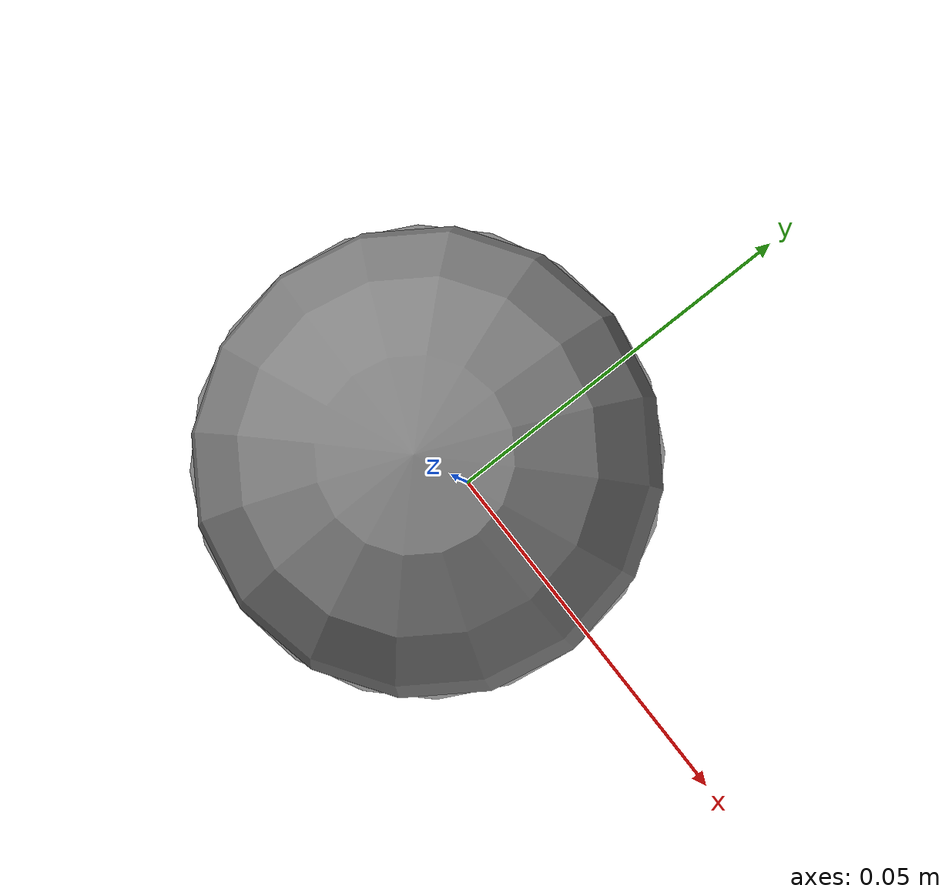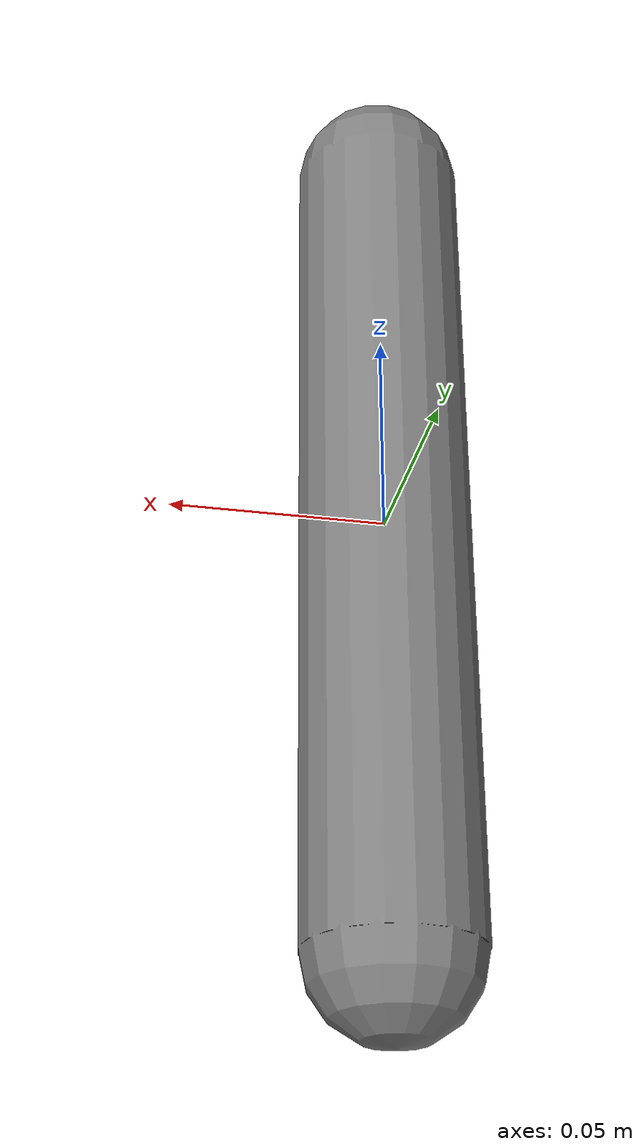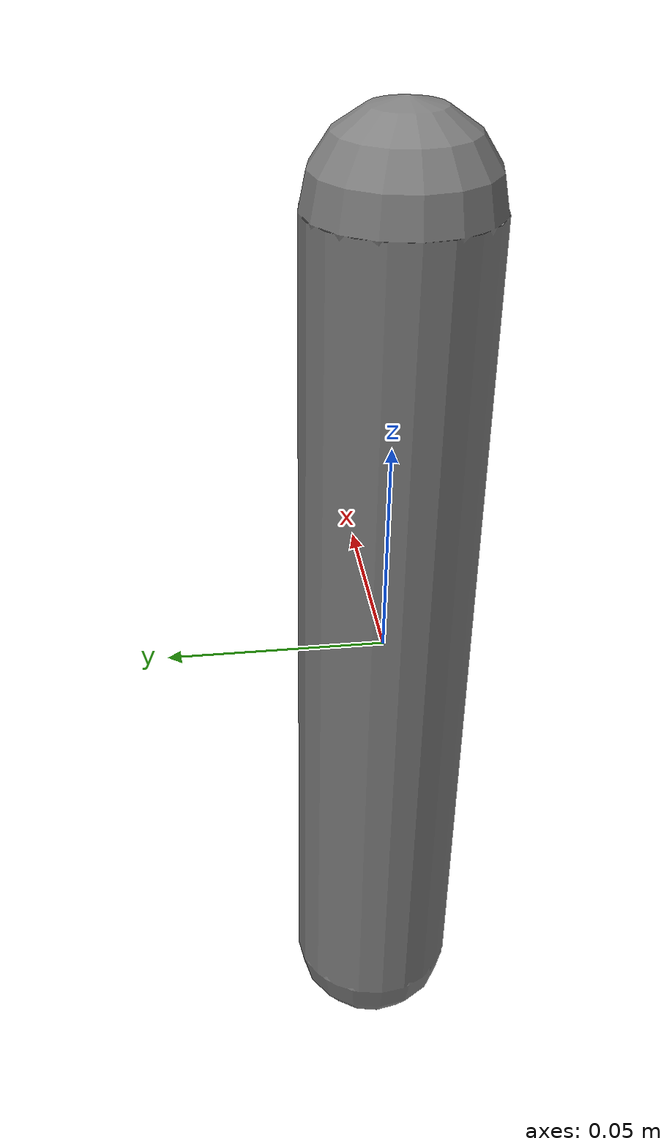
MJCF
<mujoco model="bad_actuator">
  <worldbody>
    <body name="link">
      <joint name="j" type="hinge" range="-1 1"/>
      <geom type="capsule" size="0.02 0.1" mass="0.2"/>
    </body>
  </worldbody>
  <actuator>
    <position name="ghost" joint="missing_joint" kp="10" ctrlrange="-1 1"/>
  </actuator>
</mujoco>
